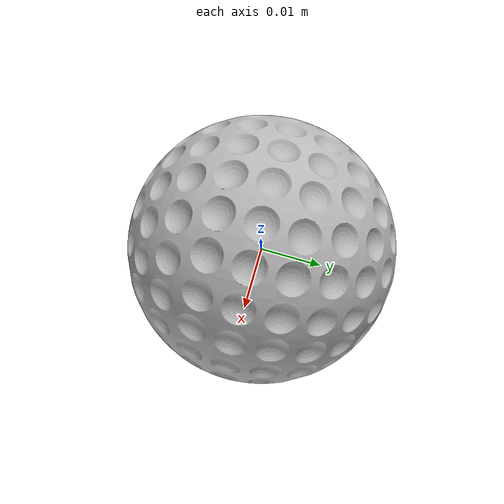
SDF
<?xml version="1.0" ?>
<sdf version="1.5">

<model name="ball">
  <static>false</static>
  <link name="ball_link">

  <visual name="ball">
    <pose>0 0 0 0 0 0</pose>
    <geometry>
      <mesh><uri>model://ball/meshes/ball.obj</uri><scale>1 1 1</scale></mesh>
    </geometry>
  </visual>

  <collision name="ball">
    <pose>0 0 0 0 0 0</pose>
    <geometry>
      <sphere><radius>0.03</radius></sphere>
    </geometry>
  </collision>

  </link>
</model>
</sdf>
